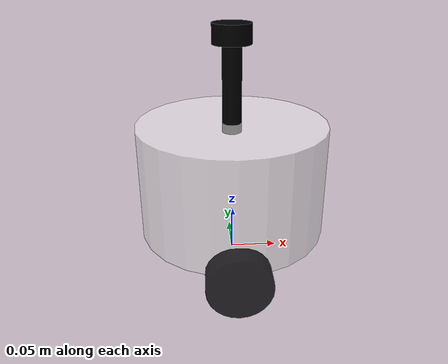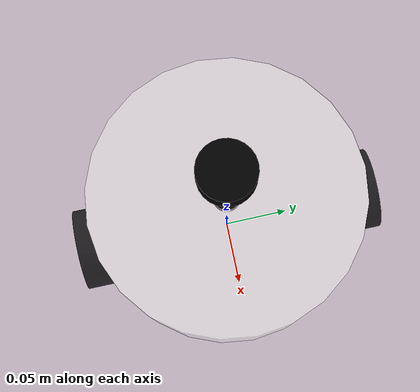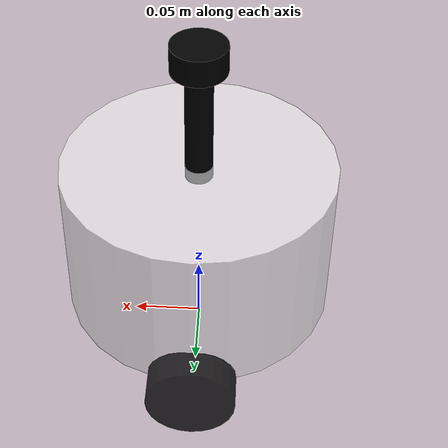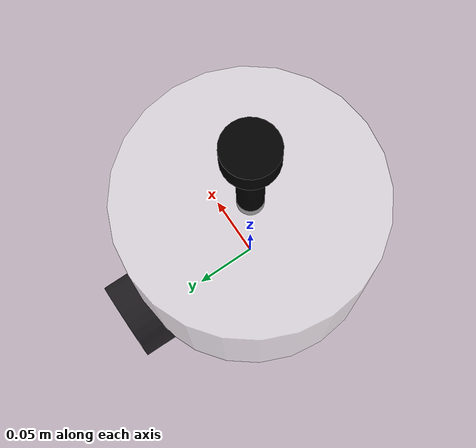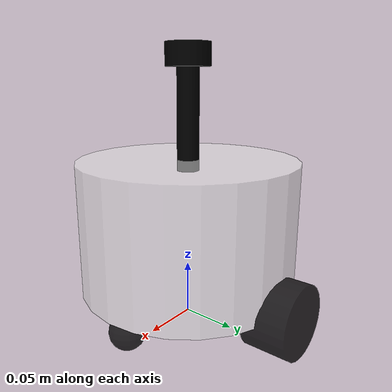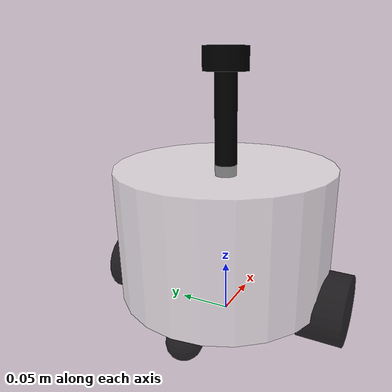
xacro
<?xml version="1.0"?>
<robot xmlns:xacro="http://www.ros.org/wiki/xacro" name="myrobot">

<xacro:include filename="$(find robot_description)/urdf/base.urdf.xacro"/>
<xacro:include filename="$(find robot_description)/urdf/sensor/imu.urdf.xacro"/>
<xacro:include filename="$(find robot_description)/urdf/sensor/laser.urdf.xacro"/>
<xacro:include filename="$(find robot_description)/urdf/actuator/wheel.urdf.xacro"/>
<xacro:include filename="$(find robot_description)/urdf/actuator/caster.urdf.xacro"/>
<xacro:include filename="$(find robot_description)/urdf/plugins/gazebo_control_plugin.xacro"/>
<xacro:include filename="$(find robot_description)/urdf/plugins/gazebo_sensor_plugin.xacro"/>
<xacro:include filename="$(find robot_description)/urdf/mybot.ros2_control.xacro"/>

<xacro:base_xacro length="0.12" radius="0.10" />
<xacro:imu_xacro xyz="0.0 0.0 0.02" />
<xacro:laser_xacro xyz="0.0 0.0 0.10"/>
<xacro:wheel_xacro wheel_name="left_wheel" xyz="0 0.10 -0.06"/>
<xacro:wheel_xacro wheel_name="right_wheel" xyz="0 -0.10 -0.06"/>
<xacro:caster_xacro caster_name="front_caster" xyz ="0.08 0.0 -0.076"/>
<xacro:caster_xacro caster_name="back_caster" xyz ="-0.08 0.0 -0.076"/>

<xacro:gazebo_sensor_plugin />
<xacro:mybot_ros2_control />

</robot>

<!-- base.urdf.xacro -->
<robot xmlns:xacro="http://www.ros.org/wiki/xacro">
    <xacro:include filename="$(find robot_description)/urdf/common_inertial.xacro"/>
    <xacro:macro name="base_xacro" params="length radius">
        <link name="base_footprint" />

        <link name="base_link">
                <visual>
                    <origin xyz="0.0 0.0 0.0" rpy="0.0 0.0 0.0"/>
                    <geometry>
                        <cylinder radius="${radius}" length="${length}"/>
                    </geometry>
                    <material name="white">
                        <color rgba="1.0 1.0 1.0 0.5"/>
                    </material>
                </visual>
                <collision>
                    <origin xyz="0.0 0.0 0.0" rpy="0.0 0.0 0.0"/>
                    <geometry>
                        <cylinder radius="${radius}" length="${length}"/>
                    </geometry>
                    <material name="white">
                        <color rgba="1.0 1.0 1.0 0.5"/>
                    </material>
                </collision>
                <xacro:cylinder_inertia m="1.0" r="${radius}" h="${length}" />
        </link>
        <joint name="joint_name" type="fixed">
            <origin xyz="0.0 0.0 ${length/2+0.032-0.001}" rpy="0.0 0.0 0.0"/>
            <parent link="base_footprint"/>
            <child link="base_link"/>
        </joint>
    </xacro:macro>

</robot>

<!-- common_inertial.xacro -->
<robot xmlns:xacro="http://ros.org/wiki/xacro">
    <xacro:macro name="box_inertia" params="m w h d">
        <inertial>
            <mass value="${m}"/>
            <inertia ixx = "${(m/12) * (h*h + d*d)}" ixy="0.0" ixz="0.0" iyy="${(m/12) * (w*w + d*d)}" iyz="0.0" izz="${(m/12) * (w*w +h*h)}"/>

        </inertial>
    </xacro:macro>

    <xacro:macro name="cylinder_inertia" params="m r h">
        <inertial>
            <mass value="${m}"/>
            <inertia ixx="${(m/12) * (3*r*r+h*h)}" ixy="0.0" ixz="0.0" iyy="${(m/12)*(3*r*r+h*h)}" iyz="0.0" izz="${(m/2)*(r*r)}"/>
        </inertial>

    </xacro:macro>

    <xacro:macro name="sphere_inertia" params="m r">
        <inertial>
            <mass value="${m}"/>
            <inertia ixx="${(2/5)*m*(r*r)}" ixy="0.0" ixz="0.0" iyy="${(2/5)*m*(r*r)}" iyz="0.0" izz="${(2/5)*m*(r*r)}"/>
        </inertial>

    </xacro:macro>
</robot>

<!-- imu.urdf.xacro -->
<robot xmlns:xacro="http://www.ros.org/wiki/xacro">
    <xacro:include filename="$(find robot_description)/urdf/common_inertial.xacro"/>
    <xacro:macro name="imu_xacro" params="xyz">
        <link name="imu_link">
            <visual>
            <origin xyz="0.0 0.0 0.0" rpy="0.0 0.0 0.0"/>
            <geometry>
                <box size="0.02 0.02 0.02"/>
            </geometry>
            <material name="black">
                <color rgba="0.0 0.0 0.0 0.5"/>
            </material>
            </visual>
            <collision>
              <origin xyz="0.0 0.0 0.0" rpy="0.0 0.0 0.0"/>
            <geometry>
                <box size="0.02 0.02 0.02"/>
            </geometry>
            <material name="black">
                <color rgba="0.0 0.0 0.0 0.5"/>
            </material>
            </collision>
            <xacro:box_inertia m="0.05" w="0.02" h="0.02" d="0.02"/>
        </link>

        <joint name="imu_joint" type="fixed">
            <parent link="base_link"/>
            <child link="imu_link"/>
            <origin xyz="${xyz}" rpy="0.0 0.0 0.0"/>
        </joint>
    </xacro:macro>

</robot>

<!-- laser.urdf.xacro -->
<robot xmlns:xacro="http://www.ros.org/wiki/xacro">
    <xacro:include filename="$(find robot_description)/urdf/common_inertial.xacro"/>
    <xacro:macro name="laser_xacro" params="xyz">

        <link name="laser_cylinder_link">
            <visual>
            <origin xyz="0.0 0.0 0.0" rpy="0.0 0.0 0.0"/>
            <geometry>
                <cylinder radius="0.01" length="0.1"/>
            </geometry>
            <material name="black">
                <color rgba="0.0 0.0 0.0 1.0"/>
            </material>
            </visual>
            <collision>
               <origin xyz="0.0 0.0 0.0" rpy="0.0 0.0 0.0"/>
            <geometry>
                <cylinder radius="0.01" length="0.1"/>
            </geometry>
            <material name="black">
                <color rgba="0.0 0.0 0.0 1.0"/>
            </material>
            </collision>
            <xacro:cylinder_inertia m="0.05" r="0.01" h="0.10"/>
        </link>
        <link name="laser_link">
            <visual name="">
                <origin xyz="0.0 0.0 0.0" rpy="0.0 0.0 0.0"/>
                <geometry>
                    <cylinder radius="0.02" length="0.02"/>
                </geometry>
                <material name="black">
                    <color rgba="0.0 0.0 0.0 1.0"/>
                    <texture filename=""/>
                </material>
            </visual>
            <collision>
                <origin xyz="0.0 0.0 0.0" rpy="0.0 0.0 0.0"/>
                <geometry>
                    <cylinder radius="0.02" length="0.02"/>
                </geometry>
                <material name="black">
                    <color rgba="0.0 0.0 0.0 1.0"/>
                    <texture filename=""/>
                </material>
            </collision>
            <xacro:cylinder_inertia m="0.10" r="0.02" h="0.02"/>
        </link>
        <joint name="laser_joint" type="fixed">
            <parent link="laser_cylinder_link"/>
            <child link="laser_link"/>
            <origin xyz="0.0 0.0 0.05" rpy="0.0 0.0 0.0"/>
        </joint>
        <joint name="laser_cylinder_joint" type="fixed">
            <parent link="base_link"/>
            <child link="laser_cylinder_link"/>
            <origin xyz="${xyz}" rpy="0.0 0.0 0.0"/>

        </joint>
    </xacro:macro>

</robot>

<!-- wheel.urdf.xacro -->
<robot xmlns:xacro="http://www.ros.org/wiki/xacro">

    <xacro:include filename="$(find robot_description)/urdf/common_inertial.xacro"/>

    <xacro:macro name="wheel_xacro" params="wheel_name xyz">

        <link name="${wheel_name}_link">

            <visual>

            <origin xyz="0.0 0.0 0.0" rpy="1.57079 0.0 0.0"/>

            <geometry>

                <cylinder radius="0.032" length="0.04"/>

            </geometry>

            <material name="black">

                <color rgba="0.0 0.0 0.0 0.8"/>

            </material>

            </visual>

            <collision>

                <origin xyz="0.0 0.0 0.0" rpy="1.57079 0.0 0.0"/>

            <geometry>

                <cylinder radius="0.032" length="0.04"/>

            </geometry>

            <material name="black">

                <color rgba="0.0 0.0 0.0 0.8"/>

            </material>

            </collision>

            <xacro:cylinder_inertia m="0.05" r="0.032" h="0.04"/>

        </link>

        <joint name="${wheel_name}_joint" type="continuous">

            <parent link="base_link"/>

            <child link="${wheel_name}_link"/>

            <origin xyz="${xyz}" rpy="0.0 0.0 0.0"/>

            <axis xyz="0 1 0"/>

        </joint>

        <gazebo reference="${wheel_name}_link">

            <mu1 value="20.0"/>

            <mu2 value="20.0"/>

            <kp value="1000000000.0"/>

            <kd value="1.0"/>

        </gazebo>

    </xacro:macro>

</robot>

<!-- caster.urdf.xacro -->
<robot xmlns:xacro="http://www.ros.org/wiki/xacro">

    <xacro:include filename="$(find robot_description)/urdf/common_inertial.xacro"/>

    <xacro:macro name="caster_xacro" params="caster_name xyz">

        <link name="${caster_name}_link">

            <visual>

            <origin xyz="0.0 0.0 0.0" rpy="0.0 0.0 0.0"/>

            <geometry>

                <sphere radius="0.016"/>

            </geometry>

            <material name="black">

                <color rgba="0.0 0.0 0.0 0.8"/>

            </material>

            </visual>

            <collision>

              <origin xyz="0.0 0.0 0.0" rpy="0.0 0.0 0.0"/>

            <geometry>

                <sphere radius="0.016"/>

            </geometry>

            <material name="black">

                <color rgba="0.0 0.0 0.0 0.8"/>

            </material>

            </collision>

            <xacro:sphere_inertia m="0.05" r="0.016"/>

        </link>

        <joint name="${caster_name}_joint" type="fixed">

            <parent link="base_link"/>

            <child link="${caster_name}_link"/>

            <origin xyz="${xyz}" rpy="0.0 0.0 0.0"/>

        </joint>

        <gazebo reference="${caster_name}_link">

            <mu1 value="0.0"/>

            <mu2 value="0.0"/>

            <kp value="1000000000.0"/>

            <kd value="1.0"/>

        </gazebo>

    </xacro:macro>

</robot>
